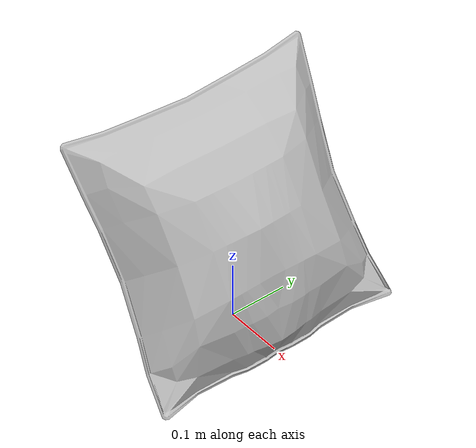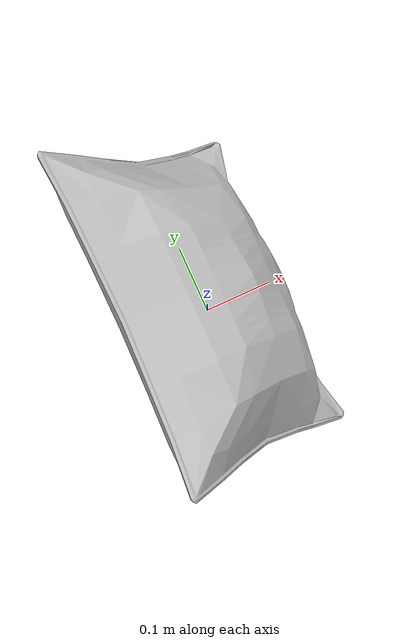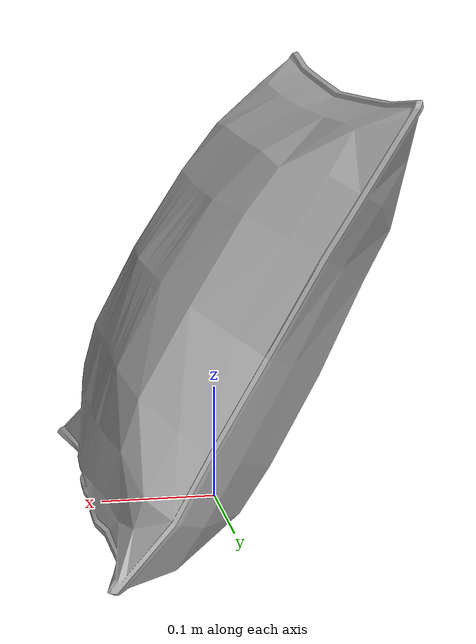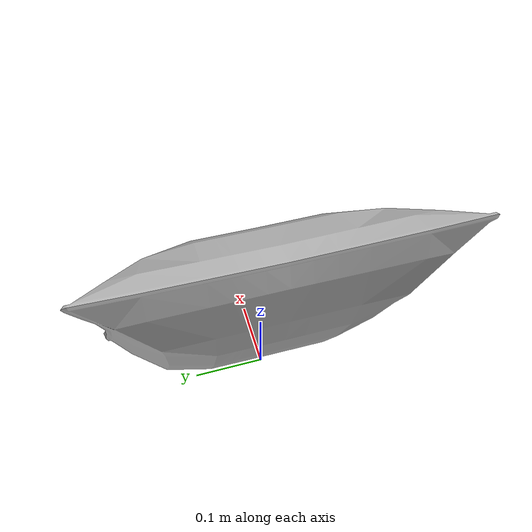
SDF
<?xml version='1.0'?>
<sdf version='1.4'>
  <model name='s__1654'>
    <pose>0 0 0 0 0 0</pose>
    <static>true</static>
    <link name='link'>
      <collision name='collision'>
        <pose>0 0 0 0 0 0</pose>
        <geometry>
          <box>
            <size>0.24 0.45 2</size>
          </box>
        </geometry>
      </collision>
      <visual name='visual'>
        <pose>0 0 0 0 0 0</pose>
        <geometry>
          <mesh><uri>model://s__1654/s__1654.dae</uri></mesh>
        </geometry>
      </visual>
    </link>
  </model>
</sdf>
